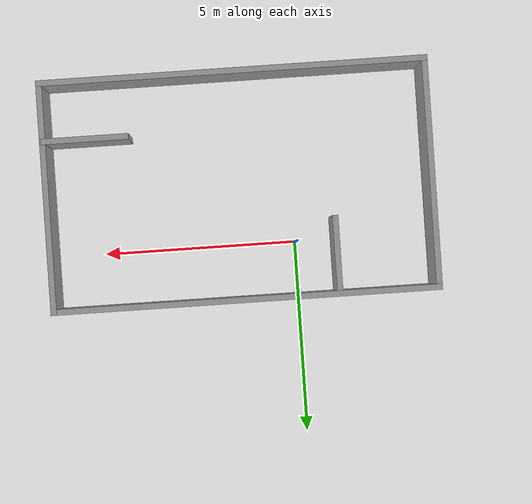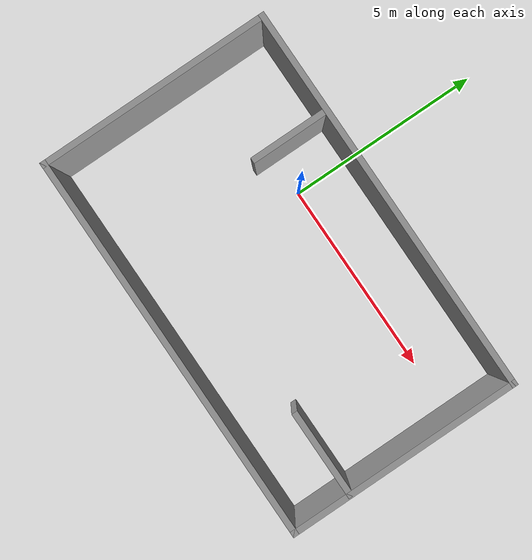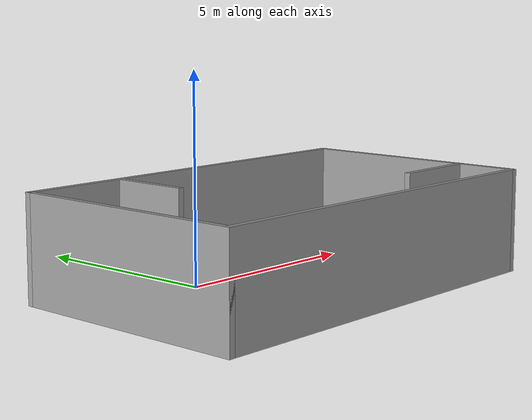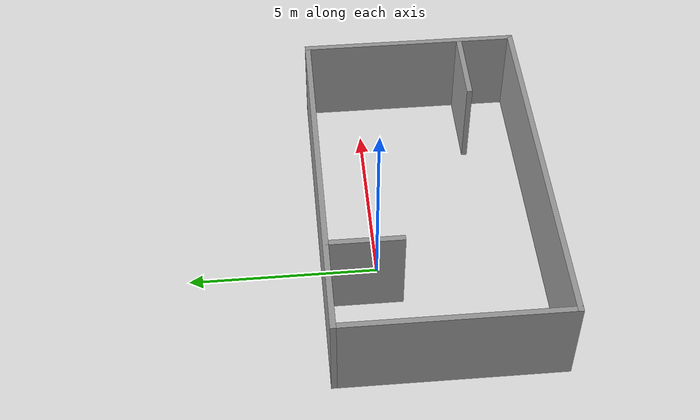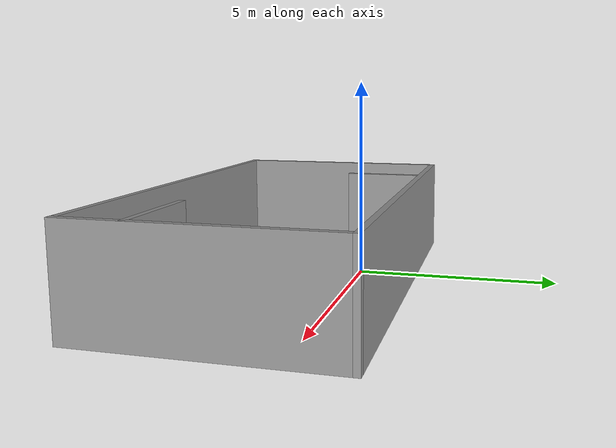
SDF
<?xml version='1.0'?>
<sdf version='1.7'>
  <model name='simple_room'>
    <pose>1.375 -1.515 0 0 -0 0</pose>
    <link name='Wall_0'>
      <collision name='Wall_0_Collision'>
        <geometry>
          <box>
            <size>10 0.15 2.5</size>
          </box>
        </geometry>
        <pose>0 0 1.25 0 -0 0</pose>
      </collision>
      <visual name='Wall_0_Visual'>
        <pose>0 0 1.25 0 -0 0</pose>
        <geometry>
          <box>
            <size>10 0.15 2.5</size>
          </box>
        </geometry>
        <material>
          <script>
            <uri>file://media/materials/scripts/gazebo.material</uri>
            <name>Gazebo/Grey</name>
          </script>
          <ambient>1 1 1 1</ambient>
        </material>
        <meta>
          <layer>0</layer>
        </meta>
      </visual>
      <pose>-0 -2.925 0 0 -0 0</pose>
    </link>
    <link name='Wall_10'>
      <collision name='Wall_10_Collision'>
        <geometry>
          <box>
            <size>2.25 0.15 2.5</size>
          </box>
        </geometry>
        <pose>0 0 1.25 0 -0 0</pose>
      </collision>
      <visual name='Wall_10_Visual'>
        <pose>0 0 1.25 0 -0 0</pose>
        <geometry>
          <box>
            <size>2.25 0.15 2.5</size>
          </box>
        </geometry>
        <material>
          <script>
            <uri>file://media/materials/scripts/gazebo.material</uri>
            <name>Gazebo/Grey</name>
          </script>
          <ambient>1 1 1 1</ambient>
        </material>
        <meta>
          <layer>0</layer>
        </meta>
      </visual>
      <pose>3.85173 -1.43517 0 0 -0 3.14159</pose>
    </link>
    <link name='Wall_4'>
      <collision name='Wall_4_Collision'>
        <geometry>
          <box>
            <size>6 0.15 2.5</size>
          </box>
        </geometry>
        <pose>0 0 1.25 0 -0 0</pose>
      </collision>
      <visual name='Wall_4_Visual'>
        <pose>0 0 1.25 0 -0 0</pose>
        <geometry>
          <box>
            <size>6 0.15 2.5</size>
          </box>
        </geometry>
        <material>
          <script>
            <uri>file://media/materials/scripts/gazebo.material</uri>
            <name>Gazebo/Grey</name>
          </script>
          <ambient>1 1 1 1</ambient>
        </material>
        <meta>
          <layer>0</layer>
        </meta>
      </visual>
      <pose>4.925 -0 0 0 -0 1.5708</pose>
    </link>
    <link name='Wall_5'>
      <collision name='Wall_5_Collision'>
        <geometry>
          <box>
            <size>10 0.15 2.5</size>
          </box>
        </geometry>
        <pose>0 0 1.25 0 -0 0</pose>
      </collision>
      <visual name='Wall_5_Visual'>
        <pose>0 0 1.25 0 -0 0</pose>
        <geometry>
          <box>
            <size>10 0.15 2.5</size>
          </box>
        </geometry>
        <material>
          <script>
            <uri>file://media/materials/scripts/gazebo.material</uri>
            <name>Gazebo/Grey</name>
          </script>
          <ambient>1 1 1 1</ambient>
        </material>
        <meta>
          <layer>0</layer>
        </meta>
      </visual>
      <pose>-0 2.925 0 0 -0 3.14159</pose>
    </link>
    <link name='Wall_6'>
      <collision name='Wall_6_Collision'>
        <geometry>
          <box>
            <size>6 0.15 2.5</size>
          </box>
        </geometry>
        <pose>0 0 1.25 0 -0 0</pose>
      </collision>
      <visual name='Wall_6_Visual'>
        <pose>0 0 1.25 0 -0 0</pose>
        <geometry>
          <box>
            <size>6 0.15 2.5</size>
          </box>
        </geometry>
        <material>
          <script>
            <uri>file://media/materials/scripts/gazebo.material</uri>
            <name>Gazebo/Grey</name>
          </script>
          <ambient>1 1 1 1</ambient>
        </material>
        <meta>
          <layer>0</layer>
        </meta>
      </visual>
      <pose>-4.925 -0 0 0 -0 -1.5708</pose>
    </link>
    <link name='Wall_8'>
      <collision name='Wall_8_Collision'>
        <geometry>
          <box>
            <size>2 0.15 2.5</size>
          </box>
        </geometry>
        <pose>0 0 1.25 0 -0 0</pose>
      </collision>
      <visual name='Wall_8_Visual'>
        <pose>0 0 1.25 0 -0 0</pose>
        <geometry>
          <box>
            <size>2 0.15 2.5</size>
          </box>
        </geometry>
        <material>
          <script>
            <uri>file://media/materials/scripts/gazebo.material</uri>
            <name>Gazebo/Grey</name>
          </script>
          <ambient>1 1 1 1</ambient>
        </material>
        <meta>
          <layer>0</layer>
        </meta>
      </visual>
      <pose>-2.39163 1.9249 0 0 -0 -1.5708</pose>
    </link>
    <static>1</static>
  </model>
</sdf>
